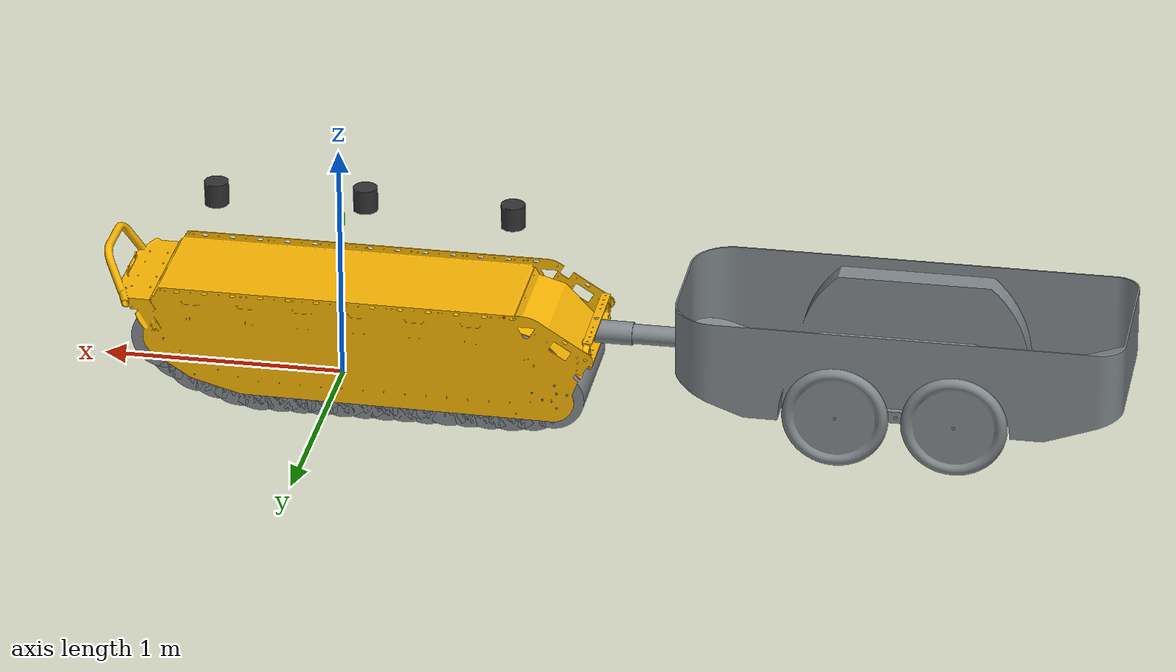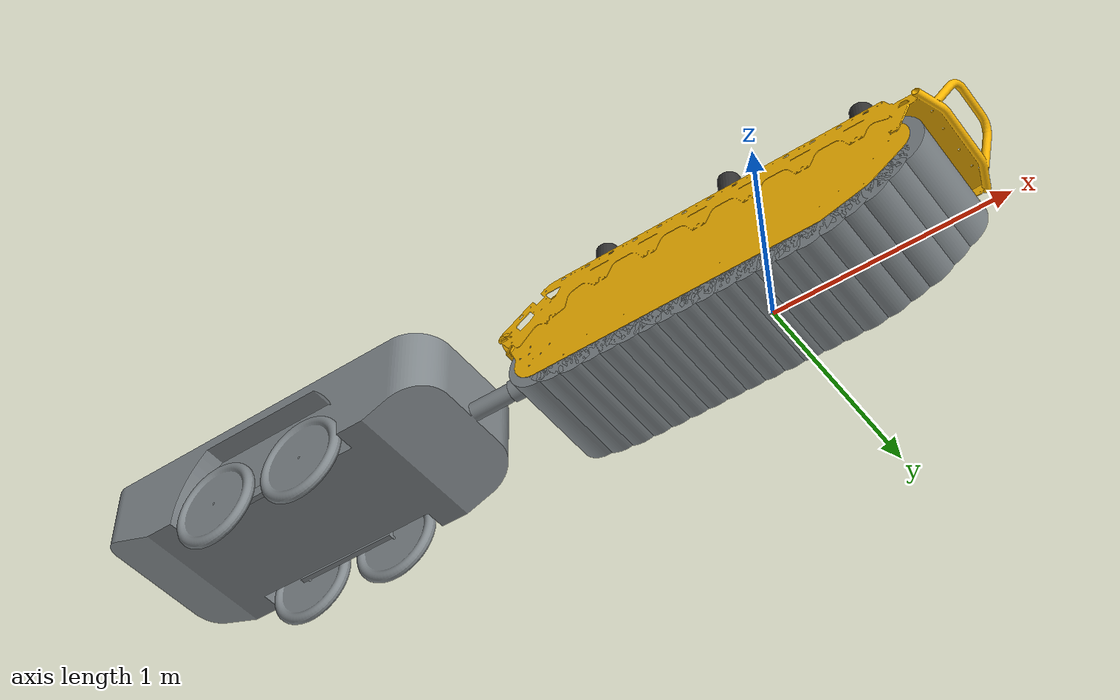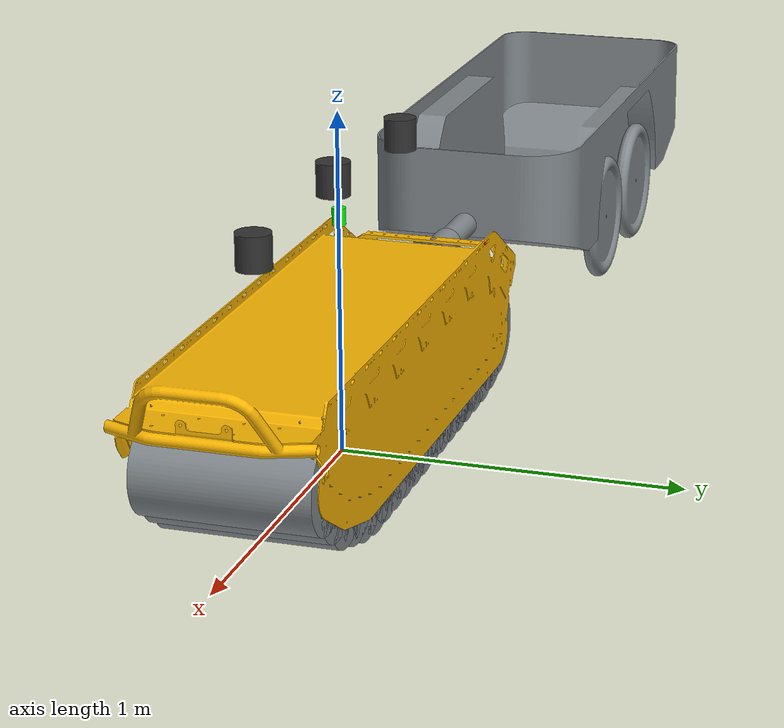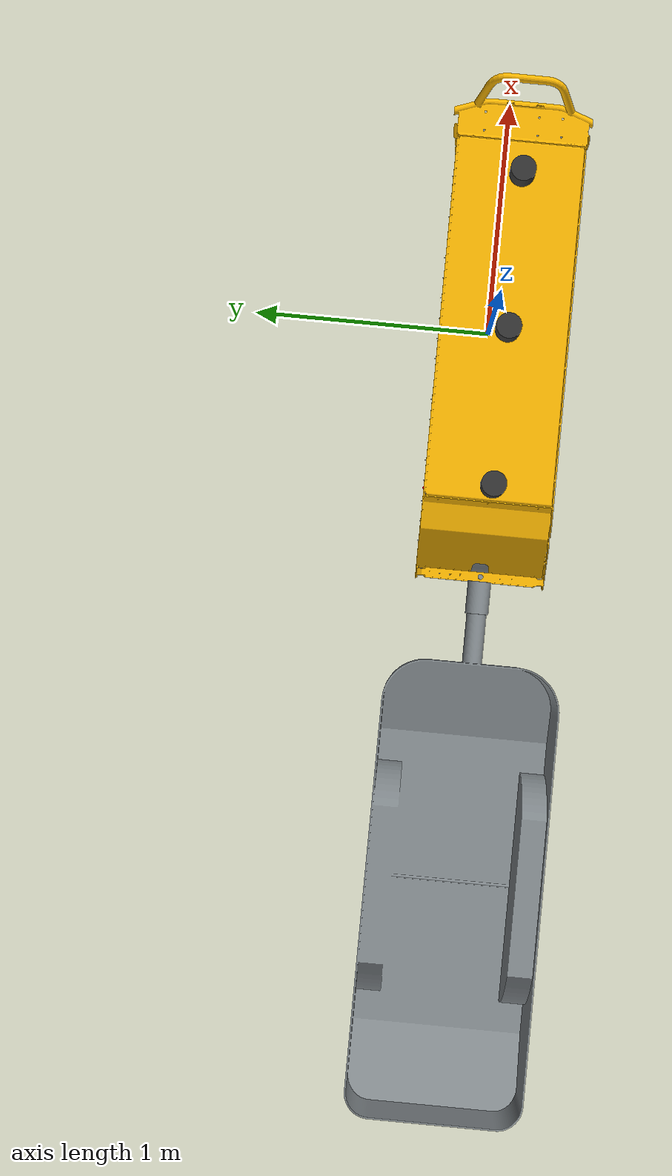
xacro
<?xml version="1.0"?>
<robot name="onshape"  xmlns:xacro="https://www.ros.org/wiki/xacro">

<xacro:arg name="calibration" default="v1"/>
<xacro:include filename="$(find mtt_description)/urdf/calibrations/calib_$(arg calibration).xacro"/>

    <xacro:macro name="default_transmission" params="joint_name">
        <transmission name="transmission_${joint_name}">
            <plugin>transmission_interface/SimpleTransmission</plugin>
            <actuator name="actuator_${joint_name}" role="actuator_${joint_name}"/>
            <joint name="${joint_name}" role="${joint_name}">
                <mechanical_reduction>1.0</mechanical_reduction>
            </joint>
        </transmission>
    </xacro:macro>

    <link name="base_footprint"/>

    <link name="base_link">
    <visual>
    <origin xyz="-0.0034808381178577409154 -0.051022168970358453 0.49330103716210749187" rpy="0 -0 ${pi}" />
    <geometry>
    <mesh filename="file://$(find mtt_description)/meshes/visual/m500_ra-02_r02.stl"/>
    </geometry>
    <material name="m500_ra-02_r02_material">
    <color rgba="0.98039215686274505668 0.71372549019607844922 0.0039215686274509803377 1.0"/>
    </material>
    </visual>

    <inertial>
    <origin xyz="-0.077915421490291292272 -0.045505372990426798396 0.20037964466672920638" rpy="0 0 0"/>
    <mass value="150" />
    <inertia ixx="11.048" ixy="0"  ixz="0" iyy="58.2688" iyz="0" izz="63.68" />
    </inertial>
    </link>

   <joint name="base_joint" type="fixed">
    <parent link="base_footprint"/>
    <child link="base_link"/>
    <origin xyz="0 0 -0.1" rpy="0 0 0"/>
    </joint>

    <link name="Rouleau_track_1">
    <visual>
    <origin xyz="0 0 -0.2619375000000000453" rpy="-1.570796326794896558 -7.703719777547410742e-33 0" />
    <geometry>
    <mesh filename="file://$(find mtt_description)/meshes/visual/rouleaufaketrack_525po.stl"/>
    </geometry>
    <material name="rouleaufaketrack_525po_material">
    <color rgba="0.50588235294117644969 0.53333333333333332593 0.54901960784313730279 1.0"/>
    </material>
    </visual>
    <inertial>
    <origin xyz="-9.082983389429123799e-12 -8.2227341536032504615e-12 -0.26193750000873389228" rpy="0 0 0"/>
    <mass value="1.0" />
    <inertia ixx="0.0254" ixy="0"  ixz="0" iyy="0.0254" iyz="0" izz="8.890e-3" />
    </inertial>
    </link>

    <joint name="1_continuous" type="continuous">
    <origin xyz="0.7014675763219452298 -0.30260966897135904707 0.29942602155526376606" rpy="1.570796326794896558 -0 -7.5633943552588769595e-16" />
    <parent link="base_link" />
    <child link="Rouleau_track_1" />
    <axis xyz="0 0 1"/>
    <limit effort="-1" velocity="20" />
    <physics>
    <simbody></simbody>
    <ode>
    <implicit_string_damper>True</implicit_string_damper>
    <fudge_factor>1</fudge_factor>
    </ode>
    <suspension>
    </suspension>
    </physics>
    </joint>

    <link name="Rouleau_track_2">
    <visual>
    <origin xyz="0 0 -0.2619375000000000453" rpy="-1.570796326794896558 -7.703719777547410742e-33 0" />
    <geometry>
    <mesh filename="file://$(find mtt_description)/meshes/visual/rouleaufaketrack_525po.stl"/>
    </geometry>
    <material name="rouleaufaketrack_525po_material">
    <color rgba="0.50588235294117644969 0.53333333333333332593 0.54901960784313730279 1.0"/>
    </material>
    </visual>
    <inertial>
    <origin xyz="-9.082983389429123799e-12 -8.2227341536032504615e-12 -0.26193750000873389228" rpy="0 0 0"/>
    <mass value="1.0" />
    <inertia ixx="0.0254" ixy="0"  ixz="0" iyy="0.0254" iyz="0" izz="8.890e-3" />
    </inertial>
    </link>

    <joint name="2_continuous" type="continuous">
    <origin xyz="0.63021293776953013488 -0.30260966897135899156 0.24925922731169392055" rpy="1.570796326794896558 -0 -7.5633943552588769595e-16" />
    <parent link="base_link" />
    <child link="Rouleau_track_2" />
    <axis xyz="0 0 1"/>
    <limit effort="-1" velocity="20" />
    <physics>
    <simbody></simbody>
    <ode>
    <implicit_string_damper>True</implicit_string_damper>
    <fudge_factor>1</fudge_factor>
    </ode>
    <suspension>
    </suspension>
    </physics>
    </joint>

    <link name="Rouleau_track_3">
    <visual>
    <origin xyz="0 0 -0.2619375000000000453" rpy="-1.570796326794896558 -2.9274135154685984966e-32 0" />
    <geometry>
    <mesh filename="file://$(find mtt_description)/meshes/visual/rouleaufaketrack_525po.stl"/>
    </geometry>
    <material name="rouleaufaketrack_525po_material">
    <color rgba="0.50588235294117644969 0.53333333333333332593 0.54901960784313730279 1.0"/>
    </material>
    </visual>
    <inertial>
    <origin xyz="-9.082983389429123799e-12 -8.2227341536032504615e-12 -0.26193750000873389228" rpy="0 0 0"/>
    <mass value="1.0" />
    <inertia ixx="0.0254" ixy="0"  ixz="0" iyy="0.0254" iyz="0" izz="8.890e-3" />
    </inertial>
    </link>

    <joint name="3_continuous" type="continuous">
    <origin xyz="0.55767703136521962204 -0.30260966897135893605 0.20171053820694723191" rpy="1.570796326794896558 -0 -7.5633943552588769595e-16" />
    <parent link="base_link" />
    <child link="Rouleau_track_3" />
    <axis xyz="0 0 1"/>
    <limit effort="-1" velocity="20" />
    <physics>
    <simbody></simbody>
    <ode>
    <implicit_string_damper>True</implicit_string_damper>
    <fudge_factor>1</fudge_factor>
    </ode>
    <suspension>
    </suspension>
    </physics>
    </joint>

    <link name="Rouleau_track_4">
    <visual>
    <origin xyz="0 0 -0.2619375000000000453" rpy="-1.570796326794896558 -2.9274135154685984966e-32 0" />
    <geometry>
    <mesh filename="file://$(find mtt_description)/meshes/visual/rouleaufaketrack_525po.stl"/>
    </geometry>
    <material name="rouleaufaketrack_525po_material">
    <color rgba="0.50588235294117644969 0.53333333333333332593 0.54901960784313730279 1.0"/>
    </material>
    </visual>
    <inertial>
    <origin xyz="-9.082983389429123799e-12 -8.2227341536032504615e-12 -0.26193750000873389228" rpy="0 0 0"/>
    <mass value="1.0" />
    <inertia ixx="0.0254" ixy="0"  ixz="0" iyy="0.0254" iyz="0" izz="8.890e-3" />
    </inertial>
    </link>

    <joint name="4_continuous" type="continuous">
    <origin xyz="0.47434412390430480411 -0.30260966897135888054 0.17622412429685807567" rpy="1.570796326794896558 -0 -7.5633943552588769595e-16" />
    <parent link="base_link" />
    <child link="Rouleau_track_4" />
    <axis xyz="0 0 1"/>
    <limit effort="-1" velocity="20" />
    <physics>
    <simbody></simbody>
    <ode>
    <implicit_string_damper>True</implicit_string_damper>
    <fudge_factor>1</fudge_factor>
    </ode>
    <suspension>
    </suspension>
    </physics>
    </joint>

    <link name="Rouleau_track_5">
    <visual>
    <origin xyz="0 0 -0.2619375000000000453" rpy="-1.570796326794896558 -2.9274135154685984966e-32 0" />
    <geometry>
    <mesh filename="file://$(find mtt_description)/meshes/visual/rouleaufaketrack_525po.stl"/>
    </geometry>
    <material name="rouleaufaketrack_525po_material">
    <color rgba="0.50588235294117644969 0.53333333333333332593 0.54901960784313730279 1.0"/>
    </material>
    </visual>

    <collision>
    <origin xyz="0 0 -0.2619375000000000453" rpy="0 -2.9274135154685984966e-32 0" />
    <geometry>
    <cylinder length="0.5" radius="0.1335"/>
    </geometry>
    </collision>

    <inertial>
    <origin xyz="-9.082983389429123799e-12 -8.2227341536032504615e-12 -0.26193750000873389228" rpy="0 0 0"/>
    <mass value="1.0" />
    <inertia ixx="0.0254" ixy="0"  ixz="0" iyy="0.0254" iyz="0" izz="8.890e-3" />
    </inertial>
    </link>

    <joint name="5_continuous" type="continuous">
    <origin xyz="0.39101121644338021621 -0.30260966897135876952 0.15073771038676886391" rpy="1.570796326794896558 -0 -7.5633943552588769595e-16" />
    <parent link="base_link" />
    <child link="Rouleau_track_5" />
    <axis xyz="0 0 1"/>
    <limit effort="-1" velocity="20" />
    <physics>
    <simbody></simbody>
    <ode>
    <implicit_string_damper>True</implicit_string_damper>
    <fudge_factor>1</fudge_factor>
    </ode>
    <suspension>
    </suspension>
    </physics>
    </joint>

    <link name="Rouleau_track_6">
    <visual>
    <origin xyz="0 0 -0.2619375000000000453" rpy="-1.570796326794896558 -2.9274135154685984966e-32 0" />
    <geometry>
    <mesh filename="file://$(find mtt_description)/meshes/visual/rouleaufaketrack_525po.stl"/>
    </geometry>
    <material name="rouleaufaketrack_525po_material">
    <color rgba="0.50588235294117644969 0.53333333333333332593 0.54901960784313730279 1.0"/>
    </material>
    </visual>
    <inertial>
    <origin xyz="-9.082983389429123799e-12 -8.2227341536032504615e-12 -0.26193750000873389228" rpy="0 0 0"/>
    <mass value="1.0" />
    <inertia ixx="0.0254" ixy="0"  ixz="0" iyy="0.0254" iyz="0" izz="8.890e-3" />
    </inertial>
    </link>

    <joint name="6_continuous" type="continuous">
    <origin xyz="0.30589785624702453548 -0.30260966897135871401 0.13716525069048957075" rpy="1.570796326794896558 -0 -7.5633943552588769595e-16" />
    <parent link="base_link" />
    <child link="Rouleau_track_6" />
    <axis xyz="0 0 1"/>
    <limit effort="-1" velocity="20" />
    <physics>
    <simbody></simbody>
    <ode>
    <implicit_string_damper>True</implicit_string_damper>
    <fudge_factor>1</fudge_factor>
    </ode>
    <suspension>
    </suspension>
    </physics>
    </joint>

    <link name="Rouleau_track_7">
    <visual>
    <origin xyz="5.5511151231257827021e-17 0 -0.2619375000000000453" rpy="-1.570796326794896558 -2.9274135154685984966e-32 0" />
    <geometry>
    <mesh filename="file://$(find mtt_description)/meshes/visual/rouleaufaketrack_525po.stl"/>
    </geometry>
    <material name="rouleaufaketrack_525po_material">
    <color rgba="0.50588235294117644969 0.53333333333333332593 0.54901960784313730279 1.0"/>
    </material>
    </visual>
    <inertial>
    <origin xyz="-9.0829278782778925411e-12 -8.2227341536032504615e-12 -0.26193750000873389228" rpy="0 0 0"/>
    <mass value="1.0" />
    <inertia ixx="0.0254" ixy="0"  ixz="0" iyy="0.0254" iyz="0" izz="8.890e-3" />
    </inertial>
    </link>

    <joint name="7_continuous" type="continuous">
    <origin xyz="0.21875469438405417688 -0.3026096689713586585 0.13717527124629197433" rpy="1.570796326794896558 -0 -7.5633943552588769595e-16" />
    <parent link="base_link" />
    <child link="Rouleau_track_7" />
    <axis xyz="0 0 1"/>
    <limit effort="-1" velocity="20" />
    <physics>
    <simbody></simbody>
    <ode>
    <implicit_string_damper>True</implicit_string_damper>
    <fudge_factor>1</fudge_factor>
    </ode>
    <suspension>
    </suspension>
    </physics>
    </joint>

    <link name="Rouleau_track_8">
    <visual>
    <origin xyz="5.5511151231257827021e-17 0 -0.2619375000000000453" rpy="-1.570796326794896558 -2.9274135154685984966e-32 0" />
    <geometry>
    <mesh filename="file://$(find mtt_description)/meshes/visual/rouleaufaketrack_525po.stl"/>
    </geometry>
    <material name="rouleaufaketrack_525po_material">
    <color rgba="0.50588235294117644969 0.53333333333333332593 0.54901960784313730279 1.0"/>
    </material>
    </visual>
    <inertial>
    <origin xyz="-9.0829278782778925411e-12 -8.2227341536032504615e-12 -0.26193750000873389228" rpy="0 0 0"/>
    <mass value="1.0" />
    <inertia ixx="0.0254" ixy="0"  ixz="0" iyy="0.0254" iyz="0" izz="8.890e-3" />
    </inertial>
    </link>

    <joint name="8_continuous" type="continuous">
    <origin xyz="0.13161153252108562239 -0.3026096689713586585 0.13718529180209448892" rpy="1.570796326794896558 -0 -7.5633943552588769595e-16" />
    <parent link="base_link" />
    <child link="Rouleau_track_8" />
    <axis xyz="0 0 1"/>
    <limit effort="-1" velocity="20" />
    <physics>
    <simbody></simbody>
    <ode>
    <implicit_string_damper>True</implicit_string_damper>
    <fudge_factor>1</fudge_factor>
    </ode>
    <suspension>
    </suspension>
    </physics>
    </joint>

    <link name="Rouleau_track_9">
    <visual>
    <origin xyz="5.5511151231257827021e-17 0 -0.2619375000000000453" rpy="-1.570796326794896558 -2.9274135154685984966e-32 0" />
    <geometry>
    <mesh filename="file://$(find mtt_description)/meshes/visual/rouleaufaketrack_525po.stl"/>
    </geometry>
    <material name="rouleaufaketrack_525po_material">
    <color rgba="0.50588235294117644969 0.53333333333333332593 0.54901960784313730279 1.0"/>
    </material>
    </visual>
    <inertial>
    <origin xyz="-9.0829278782778925411e-12 -8.2227341536032504615e-12 -0.26193750000873389228" rpy="0 0 0"/>
    <mass value="1.0" />
    <inertia ixx="0.0254" ixy="0"  ixz="0" iyy="0.0254" iyz="0" izz="8.890e-3" />
    </inertial>
    </link>

    <joint name="9_continuous" type="continuous">
    <origin xyz="0.044468370658119274474 -0.30260966897135854747 0.13719531235789694801" rpy="1.570796326794896558 -0 -7.5633943552588769595e-16" />
    <parent link="base_link" />
    <child link="Rouleau_track_9" />
    <axis xyz="0 0 1"/>
    <limit effort="-1" velocity="20" />
    <physics>
    <simbody></simbody>
    <ode>
    <implicit_string_damper>True</implicit_string_damper>
    <fudge_factor>1</fudge_factor>
    </ode>
    <suspension>
    </suspension>
    </physics>
    </joint>

    <link name="Rouleau_track_10">
    <visual>
    <origin xyz="-2.7755575615628913511e-17 0 -0.2619375000000000453" rpy="-1.570796326794896558 -2.9274135154685984966e-32 0" />
    <geometry>
    <mesh filename="file://$(find mtt_description)/meshes/visual/rouleaufaketrack_525po.stl"/>
    </geometry>
    <material name="rouleaufaketrack_525po_material">
    <color rgba="0.50588235294117644969 0.53333333333333332593 0.54901960784313730279 1.0"/>
    </material>
    </visual>
    <inertial>
    <origin xyz="-9.0830111450047394279e-12 -8.2227341536032504615e-12 -0.26193750000873389228" rpy="0 0 0"/>
    <mass value="1.0" />
    <inertia ixx="0.0254" ixy="0"  ixz="0" iyy="0.0254" iyz="0" izz="8.890e-3" />
    </inertial>
    </link>

    <joint name="10_continuous" type="continuous">
    <origin xyz="-0.042674791204848093462 -0.30260966897135843645 0.13720533291369940709" rpy="1.570796326794896558 -0 -7.5633943552588769595e-16" />
    <parent link="base_link" />
    <child link="Rouleau_track_10" />
    <axis xyz="0 0 1"/>
    <limit effort="-1" velocity="20" />
    <physics>
    <simbody></simbody>
    <ode>
    <implicit_string_damper>True</implicit_string_damper>
    <fudge_factor>1</fudge_factor>
    </ode>
    <suspension>
    </suspension>
    </physics>
    </joint>

    <link name="Rouleau_track_11">
    <visual>
    <origin xyz="-2.7755575615628913511e-17 0 -0.2619375000000000453" rpy="-1.570796326794896558 -2.9274135154685984966e-32 0" />
    <geometry>
    <mesh filename="file://$(find mtt_description)/meshes/visual/rouleaufaketrack_525po.stl"/>
    </geometry>
    <material name="rouleaufaketrack_525po_material">
    <color rgba="0.50588235294117644969 0.53333333333333332593 0.54901960784313730279 1.0"/>
    </material>
    </visual>
    <inertial>
    <origin xyz="-9.0830111450047394279e-12 -8.2227341536032504615e-12 -0.26193750000873389228" rpy="0 0 0"/>
    <mass value="1.0" />
    <inertia ixx="0.0254" ixy="0"  ixz="0" iyy="0.0254" iyz="0" izz="8.890e-3" />
    </inertial>
    </link>

    <joint name="11_continuous" type="continuous">
    <origin xyz="-0.12981795306781560018 -0.30260966897135843645 0.13721535346950286538" rpy="1.570796326794896558 -0 -7.5633943552588769595e-16" />
    <parent link="base_link" />
    <child link="Rouleau_track_11" />
    <axis xyz="0 0 1"/>
    <limit effort="-1" velocity="20" />
    <physics>
    <simbody></simbody>
    <ode>
    <implicit_string_damper>True</implicit_string_damper>
    <fudge_factor>1</fudge_factor>
    </ode>
    <suspension>
    </suspension>
    </physics>
    </joint>

    <link name="Rouleau_track_12">
    <visual>
    <origin xyz="0 0 -0.2619375000000000453" rpy="-1.570796326794896558 -2.9274135154685984966e-32 0" />
    <geometry>
    <mesh filename="file://$(find mtt_description)/meshes/visual/rouleaufaketrack_525po.stl"/>
    </geometry>
    <material name="rouleaufaketrack_525po_material">
    <color rgba="0.50588235294117644969 0.53333333333333332593 0.54901960784313730279 1.0"/>
    </material>
    </visual>
    <inertial>
    <origin xyz="-9.082983389429123799e-12 -8.2227341536032504615e-12 -0.26193750000873389228" rpy="0 0 0"/>
    <mass value="1.0" />
    <inertia ixx="0.0254" ixy="0"  ixz="0" iyy="0.0254" iyz="0" izz="8.890e-3" />
    </inertial>
    </link>

    <joint name="12_continuous" type="continuous">
    <origin xyz="-0.21696111493078301669 -0.30260966897135832543 0.13722537402530532447" rpy="1.570796326794896558 -0 -7.5633943552588769595e-16" />
    <parent link="base_link" />
    <child link="Rouleau_track_12" />
    <axis xyz="0 0 1"/>
    <limit effort="-1" velocity="20" />
    <physics>
    <simbody></simbody>
    <ode>
    <implicit_string_damper>True</implicit_string_damper>
    <fudge_factor>1</fudge_factor>
    </ode>
    <suspension>
    </suspension>
    </physics>
    </joint>

    <link name="Rouleau_track_13">
    <visual>
    <origin xyz="0 0 -0.26193750000000010081" rpy="-1.570796326794896558 -2.9274135154685984966e-32 0" />
    <geometry>
    <mesh filename="file://$(find mtt_description)/meshes/visual/rouleaufaketrack_525po.stl"/>
    </geometry>
    <material name="rouleaufaketrack_525po_material">
    <color rgba="0.50588235294117644969 0.53333333333333332593 0.54901960784313730279 1.0"/>
    </material>
    </visual>
    <inertial>
    <origin xyz="-9.082983389429123799e-12 -8.2227341536032504615e-12 -0.26193750000873394779" rpy="0 0 0"/>
    <mass value="1.0" />
    <inertia ixx="0.0254" ixy="0"  ixz="0" iyy="0.0254" iyz="0" izz="8.890e-3" />
    </inertial>
    </link>

    <joint name="13_continuous" type="continuous">
    <origin xyz="-0.30410427679375034993 -0.30260966897135821441 0.13723539458110778355" rpy="1.570796326794896558 -0 -7.5633943552588769595e-16" />
    <parent link="base_link" />
    <child link="Rouleau_track_13" />
    <axis xyz="0 0 1"/>
    <limit effort="-1" velocity="20" />
    <physics>
    <simbody></simbody>
    <ode>
    <implicit_string_damper>True</implicit_string_damper>
    <fudge_factor>1</fudge_factor>
    </ode>
    <suspension>
    </suspension>
    </physics>
    </joint>

    <link name="Rouleau_track_14">
    <visual>
    <origin xyz="-2.7755575615628913511e-17 0 -0.2619375000000000453" rpy="-1.570796326794896558 -2.9274135154685984966e-32 0" />
    <geometry>
    <mesh filename="file://$(find mtt_description)/meshes/visual/rouleaufaketrack_525po.stl"/>
    </geometry>
    <material name="rouleaufaketrack_525po_material">
    <color rgba="0.50588235294117644969 0.53333333333333332593 0.54901960784313730279 1.0"/>
    </material>
    </visual>
    <inertial>
    <origin xyz="-9.0830111450047394279e-12 -8.2227341536032504615e-12 -0.26193750000873389228" rpy="0 0 0"/>
    <mass value="1.0" />
    <inertia ixx="0.0254" ixy="0"  ixz="0" iyy="0.0254" iyz="0" izz="8.890e-3" />
    </inertial>
    </link>

    <joint name="14_continuous" type="continuous">
    <origin xyz="-0.39124743865671768317 -0.30260966897135821441 0.13724541513691029815" rpy="1.570796326794896558 -0 -7.5633943552588769595e-16" />
    <parent link="base_link" />
    <child link="Rouleau_track_14" />
    <axis xyz="0 0 1"/>
    <limit effort="-1" velocity="20" />
    <physics>
    <simbody></simbody>
    <ode>
    <implicit_string_damper>True</implicit_string_damper>
    <fudge_factor>1</fudge_factor>
    </ode>
    <suspension>
    </suspension>
    </physics>
    </joint>

    <link name="Rouleau_track_15">
    <visual>
    <origin xyz="-2.7755575615628913511e-17 0 -0.2619375000000000453" rpy="-1.570796326794896558 -2.9274135154685984966e-32 0" />
    <geometry>
    <mesh filename="file://$(find mtt_description)/meshes/visual/rouleaufaketrack_525po.stl"/>
    </geometry>
    <material name="rouleaufaketrack_525po_material">
    <color rgba="0.50588235294117644969 0.53333333333333332593 0.54901960784313730279 1.0"/>
    </material>
    </visual>
    <inertial>
    <origin xyz="-9.0830111450047394279e-12 -8.2227341536032504615e-12 -0.26193750000873389228" rpy="0 0 0"/>
    <mass value="1.0" />
    <inertia ixx="0.0254" ixy="0"  ixz="0" iyy="0.0254" iyz="0" izz="8.890e-3" />
    </inertial>
    </link>

    <joint name="15_continuous" type="continuous">
    <origin xyz="-0.47839060051968412823 -0.30260966897135821441 0.13725543569271270172" rpy="1.570796326794896558 -0 -7.5633943552588769595e-16" />
    <parent link="base_link" />
    <child link="Rouleau_track_15" />
    <axis xyz="0 0 1"/>
    <limit effort="-1" velocity="20" />
    <physics>
    <simbody></simbody>
    <ode>
    <implicit_string_damper>True</implicit_string_damper>
    <fudge_factor>1</fudge_factor>
    </ode>
    <suspension>
    </suspension>
    </physics>
    </joint>

    <link name="Rouleau_track_16">
    <visual>
    <origin xyz="5.5511151231257827021e-17 0 -0.2619375000000000453" rpy="-1.570796326794896558 -2.9274135154685984966e-32 0" />
    <geometry>
    <mesh filename="file://$(find mtt_description)/meshes/visual/rouleaufaketrack_525po.stl"/>
    </geometry>
    <material name="rouleaufaketrack_525po_material">
    <color rgba="0.50588235294117644969 0.53333333333333332593 0.54901960784313730279 1.0"/>
    </material>
    </visual>
    <inertial>
    <origin xyz="-9.0829278782778925411e-12 -8.2227341536032504615e-12 -0.26193750000873389228" rpy="0 0 0"/>
    <mass value="1.0" />
    <inertia ixx="0.0254" ixy="0"  ixz="0" iyy="0.0254" iyz="0" izz="8.890e-3" />
    </inertial>
    </link>

    <joint name="16_continuous" type="continuous">
    <origin xyz="-0.56553376238265151699 -0.30260966897135799236 0.13726545624851521632" rpy="1.570796326794896558 -0 -7.5633943552588769595e-16" />
    <parent link="base_link" />
    <child link="Rouleau_track_16" />
    <axis xyz="0 0 1"/>
    <limit effort="-1" velocity="20" />
    <physics>
    <simbody></simbody>
    <ode>
    <implicit_string_damper>True</implicit_string_damper>
    <fudge_factor>1</fudge_factor>
    </ode>
    <suspension>
    </suspension>
    </physics>
    </joint>

    <link name="Rouleau_track_17">
    <visual>
    <origin xyz="5.5511151231257827021e-17 0 -0.2619375000000000453" rpy="-1.570796326794896558 -2.9274135154685984966e-32 0" />
    <geometry>
    <mesh filename="file://$(find mtt_description)/meshes/visual/rouleaufaketrack_525po.stl"/>
    </geometry>
    <material name="rouleaufaketrack_525po_material">
    <color rgba="0.50588235294117644969 0.53333333333333332593 0.54901960784313730279 1.0"/>
    </material>
    </visual>
    <inertial>
    <origin xyz="-9.0829278782778925411e-12 -8.2227341536032504615e-12 -0.26193750000873389228" rpy="0 0 0"/>
    <mass value="1.0" />
    <inertia ixx="0.0254" ixy="0"  ixz="0" iyy="0.0254" iyz="0" izz="8.890e-3" />
    </inertial>
    </link>

    <joint name="17_continuous" type="continuous">
    <origin xyz="-0.65267692424561885023 -0.30260966897135799236 0.13727547680431761989" rpy="1.570796326794896558 -0 -7.5633943552588769595e-16" />
    <parent link="base_link" />
    <child link="Rouleau_track_17" />
    <axis xyz="0 0 1"/>
    <limit effort="-1" velocity="20" />
    <physics>
    <simbody></simbody>
    <ode>
    <implicit_string_damper>True</implicit_string_damper>
    <fudge_factor>1</fudge_factor>
    </ode>
    <suspension>
    </suspension>
    </physics>
    </joint>

    <link name="Rouleau_track_18">
    <visual>
    <origin xyz="5.5511151231257827021e-17 0 -0.26193750000000010081" rpy="-1.570796326794896558 -2.9274135154685984966e-32 0" />
    <geometry>
    <mesh filename="file://$(find mtt_description)/meshes/visual/rouleaufaketrack_525po.stl"/>
    </geometry>
    <material name="rouleaufaketrack_525po_material">
    <color rgba="0.50588235294117644969 0.53333333333333332593 0.54901960784313730279 1.0"/>
    </material>
    </visual>
    <inertial>
    <origin xyz="-9.0829278782778925411e-12 -8.2227341536032504615e-12 -0.26193750000873394779" rpy="0 0 0"/>
    <mass value="1.0" />
    <inertia ixx="0.0254" ixy="0"  ixz="0" iyy="0.0254" iyz="0" izz="8.890e-3" />
    </inertial>
    </link>

    <joint name="18_continuous" type="continuous">
    <origin xyz="-0.73982008610858640552 -0.30260966897135788134 0.13728549736012013449" rpy="1.570796326794896558 -0 -7.5633943552588769595e-16" />
    <parent link="base_link" />
    <child link="Rouleau_track_18" />
    <axis xyz="0 0 1"/>
    <limit effort="-1" velocity="20" />
    <physics>
    <simbody></simbody>
    <ode>
    <implicit_string_damper>True</implicit_string_damper>
    <fudge_factor>1</fudge_factor>
    </ode>
    <suspension>
    </suspension>
    </physics>
    </joint>

    <link name="Rouleau_track_19">
    <visual>
    <origin xyz="0 0 -0.2619375000000000453" rpy="-1.570796326794896558 -2.9274135154685984966e-32 0" />
    <geometry>
    <mesh filename="file://$(find mtt_description)/meshes/visual/rouleaufaketrack_525po.stl"/>
    </geometry>
    <material name="rouleaufaketrack_525po_material">
    <color rgba="0.50588235294117644969 0.53333333333333332593 0.54901960784313730279 1.0"/>
    </material>
    </visual>
    <inertial>
    <origin xyz="-9.082983389429123799e-12 -8.2227341536032504615e-12 -0.26193750000873389228" rpy="0 0 0"/>
    <mass value="1.0" />
    <inertia ixx="0.0254" ixy="0"  ixz="0" iyy="0.0254" iyz="0" izz="8.890e-3" />
    </inertial>
    </link>

    <joint name="19_continuous" type="continuous">
    <origin xyz="-0.82595460894701899779 -0.30260966897135777032 0.14666682073043030288" rpy="1.570796326794896558 -0 -7.5633943552588769595e-16" />
    <parent link="base_link" />
    <child link="Rouleau_track_19" />
    <axis xyz="0 0 1"/>
    <limit effort="-1" velocity="20" />
    <physics>
    <simbody></simbody>
    <ode>
    <implicit_string_damper>True</implicit_string_damper>
    <fudge_factor>1</fudge_factor>
    </ode>
    <suspension>
    </suspension>
    </physics>
    </joint>

    <link name="Rouleau_track_20">
    <visual>
    <origin xyz="0 -1.3877787807814456755e-17 -0.2619375000000000453" rpy="-1.570796326794896558 1.0785207688568652149e-32 0" />
    <geometry>
    <mesh filename="file://$(find mtt_description)/meshes/visual/rouleaufaketrack_525po.stl"/>
    </geometry>
    <material name="rouleaufaketrack_525po_material">
    <color rgba="0.50588235294117644969 0.53333333333333332593 0.54901960784313730279 1.0"/>
    </material>
    </visual>

    <collision>
    <origin xyz="0 -1.3877787807814456755e-17 -0.2619375000000000453" rpy="0 1.0785207688568652149e-32 0" />
    <geometry>
    <cylinder length="0.5" radius="0.1335"/>
    </geometry>
    </collision>

    <inertial>
    <origin xyz="-9.082983389429123799e-12 -8.2227480313910582759e-12 -0.26193750000873389228" rpy="0 0 0"/>
    <mass value="1.0" />
    <inertia ixx="0.0254" ixy="0"  ixz="0" iyy="0.0254" iyz="0" izz="8.890e-3" />
    </inertial>
    </link>

    <joint name="20_continuous" type="continuous">
    <origin xyz="-0.91110403062049183376 -0.30260966897135777032 0.16520075578373016878" rpy="1.570796326794896558 -0 -7.5633943552588769595e-16" />
    <parent link="base_link" />
    <child link="Rouleau_track_20" />
    <axis xyz="0 0 1"/>
    <limit effort="-1" velocity="20" />
    <physics>
    <simbody></simbody>
    <ode>
    <implicit_string_damper>True</implicit_string_damper>
    <fudge_factor>1</fudge_factor>
    </ode>
    <suspension>
    </suspension>
    </physics>
    </joint>

    <link name="Frame_fixation_articule">
    <visual>
    <origin xyz="0 0 -0.26352500000102996314" rpy="1.570796326794896558 2.9274135154685984966e-32 0" />
    <geometry>
    <mesh filename="file://$(find mtt_description)/meshes/visual/m500_fa-f-01_r00.stl"/>
    </geometry>
    <material name="m500_fa-f-01_r00_material">
    <color rgba="0.98039215686274505668 0.71372549019607844922 0.0039215686274509803377 1.0"/>
    </material>
    </visual>
    <inertial>
    <origin xyz="-3.9892756405493079145e-11 -1.1475286443859219259e-10 -0.26817516801928165115" rpy="0 0 0"/>
    <mass value="4.2856980941026048271" />
    <inertia ixx="0.15081833822080548124" ixy="-3.1493952847483546326e-14"  ixz="-2.7291301433546465536e-09" iyy="0.14291517499876990605" iyz="4.1782617806359028221e-10" izz="0.0087729760408515339992" />
    </inertial>
    </link>

    <link name="joint_remorque_simple">
    <visual>
    <origin xyz="0 0 -0.11429999999970297253" rpy="3.141592653589793116 1.0947644252537633367e-47 2.4651903288156618919e-32" />
    <geometry>
    <mesh filename="file://$(find mtt_description)/meshes/visual/joint_remorque_simple.stl"/>
    </geometry>
    <material name="joint_remorque_simple_material">
    <color rgba="0.50588235294117644969 0.53333333333333332593 0.54901960784313730279 1.0"/>
    </material>
    </visual>
    <inertial>
    <origin xyz="-0.066649078397283970099 -1.3264048723360915067e-08 -0.057149999999851569532" rpy="0 0 0"/>
    <mass value="2.4244944218593222907" />
    <inertia ixx="0.0045362397987309356281" ixy="2.7180197249639030826e-09"  ixz="2.2800525023181053727e-41" iyy="0.0080855686635830838899" iyz="-9.2489917741012919164e-10" izz="0.0077799714228289117493" />
    </inertial>
    </link>

    <link name="MTT_remorque">
    <visual>
    <origin xyz="0 0 0" rpy="-1.570796326794896558 -2.9274135154686072548e-32 0" />
    <geometry>
    <mesh filename="file://$(find mtt_description)/meshes/visual/remorquegrise_corps.stl"/>
    </geometry>
    <material name="remorquegrise_corps_material">
    <color rgba="0.50588235294117644969 0.53333333333333332593 0.54901960784313730279 1.0"/>
    </material>
    </visual>
    <inertial>
    <origin xyz="-1.3754218481959806043e-07 0.0034236501170869263963 -1.2492342427482756584" rpy="0 0 0"/>
    <mass value="75" />
    <inertia ixx="19.61" ixy="1.9694375352015794851e-06"  ixz="3.4143802835478518731e-05" iyy="22.119" iyz="0.08948044734924905097" izz="4.369" />
    </inertial>
    </link>

    <link name="Remorque_lien_roue_gauche">
    <visual>
    <origin xyz="-0.4699000000010151723 -0.014477999967073801324 -0.025400000000000005906" rpy="0 2.9274135154685984966e-32 0" />
    <geometry>
    <mesh filename="file://$(find mtt_description)/meshes/visual/remorquebarrelienroues.stl"/>
    </geometry>
    <material name="remorquebarrelienroues_material">
    <color rgba="0.50588235294117644969 0.53333333333333332593 0.54901960784313730279 1.0"/>
    </material>
    </visual>
    <inertial>
    <origin xyz="-2.2204460492503130808e-16 -1.7347234759768070944e-18 -0.011962764931897929346" rpy="0 0 0"/>
    <mass value="1.0" />
    <inertia ixx="0.0015481614309977712648" ixy="0"  ixz="3.398701470065399431e-33" iyy="0.11698078969574195185" iyz="0" izz="0.11764728620809132564" />
    </inertial>
    </link>

    <link name="remorque_roue_FL">
    <visual>
    <origin xyz="0 -3.3306690738754696213e-16 0" rpy="0 2.9274135154685984966e-32 0" />
    <geometry>
    <mesh filename="file://$(find mtt_description)/meshes/visual/remorqueroue.stl"/>
    </geometry>
    <material name="remorqueroue_material">
    <color rgba="0.50588235294117644969 0.53333333333333332593 0.54901960784313730279 1.0"/>
    </material>
    </visual>
    <collision>
    <origin xyz="0 -3.3306690738754696213e-16 0" rpy="0 2.9274135154685984966e-32 0" />
    <geometry>
    <cylinder length="0.12" radius="0.2"/>
    </geometry>
    </collision>
    <inertial>
    <origin xyz="-5.5159452104843917813e-18 -3.3329708142992708841e-16 -0.012700000000000008157" rpy="0 0 0"/>
    <mass value="1.0" />
    <inertia ixx="0.0149" ixy="0"  ixz="1.3743513466638252754e-32" iyy="0.0149" iyz="0" izz="0.029595" />
    </inertial>
    </link>

    <joint name="frontleft_wheel" type="continuous">
    <origin xyz="0.24129999999999984794 0 0.050800000000000039568" rpy="0 2.9274135154685984966e-32 0" />
    <parent link="Remorque_lien_roue_gauche" />
    <child link="remorque_roue_FL" />
    <axis xyz="0 0 1"/>
    <limit effort="-1" velocity="20" />
    <physics>
    <simbody></simbody>
    <ode>
    <implicit_string_damper>True</implicit_string_damper>
    <fudge_factor>1</fudge_factor>
    </ode>
    <suspension>
    </suspension>
    </physics>
    </joint>

    <link name="remorque_roue_BL">
    <visual>
    <origin xyz="0 -3.3306690738754696213e-16 0" rpy="0 2.9274135154685984966e-32 0" />
    <geometry>
    <mesh filename="file://$(find mtt_description)/meshes/visual/remorqueroue.stl"/>
    </geometry>
    <material name="remorqueroue_material">
    <color rgba="0.50588235294117644969 0.53333333333333332593 0.54901960784313730279 1.0"/>
    </material>
    </visual>
    <collision>
    <origin xyz="0 -3.3306690738754696213e-16 0" rpy="0 2.9274135154685984966e-32 0" />
    <geometry>
    <cylinder length="0.12" radius="0.2"/>
    </geometry>
    </collision>
    <inertial>
    <origin xyz="-5.5159452104843917813e-18 -3.3329708142992708841e-16 -0.012700000000000008157" rpy="0 0 0"/>
    <mass value="1.0" />
    <inertia ixx="0.0149" ixy="0"  ixz="1.3743513466638252754e-32" iyy="0.0149" iyz="0" izz="0.029595" />
    </inertial>
    </link>

    <joint name="backleft_wheel" type="continuous">
    <origin xyz="-0.24129999999999984794 0 0.050799999999999984057" rpy="0 2.9274135154685984966e-32 0" />
    <parent link="Remorque_lien_roue_gauche" />
    <child link="remorque_roue_BL" />
    <axis xyz="0 0 1"/>
    <limit effort="-1" velocity="20" />
    <physics>
    <simbody></simbody>
    <ode>
    <implicit_string_damper>True</implicit_string_damper>
    <fudge_factor>1</fudge_factor>
    </ode>
    <suspension>
    </suspension>
    </physics>
    </joint>

    <joint name="Remorque_lien_roue_gauche_joint" type="revolute">
    <origin xyz="0.2793999999999999817 -0.13792199999999998905 -1.2699999999999995737" rpy="-3.141592653589793116 -1.570796326794896558 0" />
    <parent link="MTT_remorque" />
    <child link="Remorque_lien_roue_gauche" />
    <axis xyz="0 0 1"/>
    <limit effort="-1" velocity="20" lower="-0.52359877559829881566" upper="0.52359877559829881566"/>
    </joint>

    <link name="Remorque_lien_roue_droite">
    <visual>
    <origin xyz="-0.4699000000010151723 -0.014477999967073801324 -0.025400000000000033662" rpy="0 -2.9274135154685984966e-32 0" />
    <geometry>
    <mesh filename="file://$(find mtt_description)/meshes/visual/remorquebarrelienroues.stl"/>
    </geometry>
    <material name="remorquebarrelienroues_material">
    <color rgba="0.50588235294117644969 0.53333333333333332593 0.54901960784313730279 1.0"/>
    </material>
    </visual>
    <inertial>
    <origin xyz="-2.2204460492503130808e-16 -1.7347234759768070944e-18 -0.011962764931897957102" rpy="0 0 0"/>
    <mass value="1.0" />
    <inertia ixx="0.0015481614309977712648" ixy="0"  ixz="-3.398701470065399431e-33" iyy="0.11698078969574195185" iyz="0" izz="0.11764728620809132564" />
    </inertial>
    </link>

    <link name="remorque_roue_FR">
    <visual>
    <origin xyz="0 -3.3306690738754696213e-16 5.5511151231257827021e-17" rpy="0 -2.9274135154685984966e-32 0" />
    <geometry>
    <mesh filename="file://$(find mtt_description)/meshes/visual/remorqueroue.stl"/>
    </geometry>
    <material name="remorqueroue_material">
    <color rgba="0.50588235294117644969 0.53333333333333332593 0.54901960784313730279 1.0"/>
    </material>
    </visual>
    <collision>
    <origin xyz="0 -3.3306690738754696213e-16 5.5511151231257827021e-17" rpy="0 -2.9274135154685984966e-32 0" />
    <geometry>
    <cylinder length="0.12" radius="0.2"/>
    </geometry>
    </collision>
    <inertial>
    <origin xyz="-5.5159452104843917813e-18 -3.3329708142992708841e-16 -0.012699999999999952646" rpy="0 0 0"/>
    <mass value="1.0" />
    <inertia ixx="0.0149" ixy="0"  ixz="-1.3743513466638252754e-32" iyy="0.0149" iyz="0" izz="0.029595" />
    </inertial>
    </link>

    <joint name="frontright_wheel" type="continuous">
    <origin xyz="0.24129999999999984794 -1.1102230246251565404e-16 0.050799999999999956302" rpy="0 -2.9274135154685984966e-32 0" />
    <parent link="Remorque_lien_roue_droite" />
    <child link="remorque_roue_FR" />
    <axis xyz="0 0 1"/>
    <limit effort="-1" velocity="20" />
    <physics>
    <simbody></simbody>
    <ode>
    <implicit_string_damper>True</implicit_string_damper>
    <fudge_factor>1</fudge_factor>
    </ode>
    <suspension>
    </suspension>
    </physics>
    </joint>

    <link name="remorque_roue_BR">
    <visual>
    <origin xyz="0 -3.3306690738754696213e-16 0" rpy="0 -2.9274135154685984966e-32 0" />
    <geometry>
    <mesh filename="file://$(find mtt_description)/meshes/visual/remorqueroue.stl"/>
    </geometry>
    <material name="remorqueroue_material">
    <color rgba="0.50588235294117644969 0.53333333333333332593 0.54901960784313730279 1.0"/>
    </material>
    </visual>
    <collision>
    <origin xyz="0 -3.3306690738754696213e-16 0" rpy="0 -2.9274135154685984966e-32 0" />
    <geometry>
    <cylinder length="0.12" radius="0.2"/>
    </geometry>
    </collision>
    <inertial>
    <origin xyz="-5.5159452104843917813e-18 -3.3329708142992708841e-16 -0.012700000000000008157" rpy="0 0 0"/>
    <mass value="1.0" />
    <inertia ixx="0.0149" ixy="0"  ixz="-1.3743513466638252754e-32" iyy="0.0149" iyz="0" izz="0.029595" />
    </inertial>
    </link>

    <joint name="backright_wheel" type="continuous">
    <origin xyz="-0.24130000000000029203 0 0.050799999999999845279" rpy="0 -2.9274135154685984966e-32 0" />
    <parent link="Remorque_lien_roue_droite" />
    <child link="remorque_roue_BR" />
    <axis xyz="0 0 1"/>
    <limit effort="-1" velocity="20" />
    <physics>
    <simbody></simbody>
    <ode>
    <implicit_string_damper>True</implicit_string_damper>
    <fudge_factor>1</fudge_factor>
    </ode>
    <suspension>
    </suspension>
    </physics>
    </joint>

    <joint name="Remorque_lien_roue_droite_joint" type="revolute">
    <origin xyz="-0.27940000000000003721 -0.13792199999999998905 -1.2700000000000000178" rpy="-0 -1.570796326794896558 0" />
    <parent link="MTT_remorque" />
    <child link="Remorque_lien_roue_droite" />
    <axis xyz="0 0 1"/>
    <limit effort="-1" velocity="20" lower="-0.52359877559829881566" upper="0.52359877559829881566"/>
    <physics>
    <simbody></simbody>
    <ode>
    <implicit_string_damper>True</implicit_string_damper>
    <fudge_factor>1</fudge_factor>
    </ode>
    <suspension>
    </suspension>
    </physics>
    </joint>

    <joint name="roll" type="revolute">
    <origin xyz="0 -1.1102230246251565404e-16 -0.057149999999851597288" rpy="-1.570796326794896558 -1.8488927466117469663e-32 -1.570796326794896558" />
    <parent link="joint_remorque_simple" />
    <child link="MTT_remorque" />
    <axis xyz="0 0 1"/>
    <limit effort="-1" velocity="20" lower="-1.570796326794896558" upper="1.570796326794896558"/>
    <physics>
    <simbody></simbody>
    <ode>
    <implicit_string_damper>True</implicit_string_damper>
    <fudge_factor>1</fudge_factor>
    </ode>
    <suspension>
    </suspension>
    </physics>
    </joint>

    <joint name="yaw" type="revolute">
    <origin xyz="3.9990233346998138586e-13 0.057149999999500017411 -0.26352500000202994102" rpy="-1.570796326794896558 2.9274135154685984966e-32 0" />
    <parent link="Frame_fixation_articule" />
    <child link="joint_remorque_simple" />
    <axis xyz="0 0 1"/>
    <limit effort="1000000000.0" velocity="20" lower="-0.78539816339744830962" upper="0.78539816339744830962"/>
    <physics>
    <simbody></simbody>
    <ode>
    <implicit_string_damper>True</implicit_string_damper>
    <fudge_factor>1</fudge_factor>
    </ode>
    <suspension>
    </suspension>
    </physics>
    </joint>

    <joint name="pitch" type="revolute">
    <origin xyz="-1.0511878376018575221 0.21250283103064232515 0.35775105114691785335" rpy="-1.570796326794896558 -0 -7.5633943552588769595e-16" />
    <parent link="base_link" />
    <child link="Frame_fixation_articule" />
    <axis xyz="0 0 1"/>
    <limit effort="-1" velocity="20" lower="-1.570796326794896558" upper="1.570796326794896558"/>
    <physics>
    <simbody></simbody>
    <ode>
    <implicit_string_damper>True</implicit_string_damper>
    <fudge_factor>1</fudge_factor>
    </ode>
    <suspension>
    </suspension>
    </physics>
    </joint>

        <xacro:include filename="$(find mtt_description)/urdf/mtt_ros2_control.xacro"/>
    <xacro:mtt_ros2_control />

    <xacro:default_transmission joint_name="1_continuous"/>
    <xacro:default_transmission joint_name="2_continuous"/>
    <xacro:default_transmission joint_name="3_continuous"/>
    <xacro:default_transmission joint_name="4_continuous"/>
    <xacro:default_transmission joint_name="5_continuous"/>
    <xacro:default_transmission joint_name="6_continuous"/>
    <xacro:default_transmission joint_name="7_continuous"/>
    <xacro:default_transmission joint_name="8_continuous"/>
    <xacro:default_transmission joint_name="9_continuous"/>
    <xacro:default_transmission joint_name="10_continuous"/>
    <xacro:default_transmission joint_name="11_continuous"/>
    <xacro:default_transmission joint_name="12_continuous"/>
    <xacro:default_transmission joint_name="13_continuous"/>
    <xacro:default_transmission joint_name="14_continuous"/>
    <xacro:default_transmission joint_name="15_continuous"/>
    <xacro:default_transmission joint_name="16_continuous"/>
    <xacro:default_transmission joint_name="17_continuous"/>
    <xacro:default_transmission joint_name="18_continuous"/>
    <xacro:default_transmission joint_name="19_continuous"/>
    <xacro:default_transmission joint_name="20_continuous"/>
    <xacro:default_transmission joint_name="yaw"/>

    <gazebo reference="base_link">
        <material>Gazebo/Orange</material>
    </gazebo>

    <gazebo reference="Frame_fixation_articule">
        <material>Gazebo/Blue</material>
    </gazebo>

    <gazebo reference="joint_remorque_simple">
        <material>Gazebo/Black</material>
    </gazebo>

    <gazebo reference="MTT_remorque">
        <material>Gazebo/Orange</material>
    </gazebo>

<!-- LiDAR Link -->
<link name="lidar_link">
  <pose>0 0 0.2 0 0 0</pose>

  <visual>
    <geometry>
      <cylinder length="0.05" radius="0.02"/>
    </geometry>
    <material name="green">
      <color rgba="0 1 0 1"/>
    </material>
  </visual>

  <inertial>
    <mass value="0.1"/>
    <inertia ixx="0.0001" ixy="0.0" ixz="0.0"
             iyy="0.0001" iyz="0.0"
             izz="0.0001"/>
  </inertial>
</link>

<!-- Physical pencil mark reference point -->
<link name="reference_point">
  <visual>
    <origin xyz="0 0 0" rpy="0 0 0"/>
    <geometry>
      <sphere radius="0.005"/>
    </geometry>
    <material name="mark_material">
      <color rgba="1.0 0.0 0.0 1.0"/>
    </material>
  </visual>
</link>

<joint name="reference_point_joint" type="fixed">
  <parent link="base_link"/>
  <child link="reference_point"/>
  <origin xyz="-0.7174808381178577409 0.21597831029643155 0.52330103716210749187" rpy="0 0 0"/>
</joint>

<!-- Hesai XT-32 — direct joint from reference_point (center_lidar_link alias removed) -->
<link name="hesai_lidar">
  <visual>
    <origin xyz="0 0 0" rpy="0 0 0"/>
    <geometry>
      <cylinder radius="0.05" length="0.1"/>
    </geometry>
    <material name="lidar_material">
      <color rgba="0.2 0.2 0.2 1.0"/>
    </material>
  </visual>
  <inertial>
    <origin xyz="0 0 0" rpy="0 0 0"/>
    <mass value="0.1"/>
    <inertia ixx="0.0001" ixy="0.0" ixz="0.0"
             iyy="0.0001" iyz="0.0"
             izz="0.0001"/>
  </inertial>
</link>

<joint name="hesai_lidar_joint" type="fixed">
  <parent link="reference_point"/>
  <child link="hesai_lidar"/>
  <origin xyz="${hesai_calib_xyz}" rpy="${hesai_calib_rpy}"/>
</joint>

<link name="imu_link"/>

<joint name="imu_joint" type="fixed">
  <parent link="hesai_lidar"/>
  <child link="imu_link"/>
  <origin xyz="${imu_calib_xyz}" rpy="${imu_calib_rpy}"/>
</joint>

<link name="mti10_imu_link_right"/>

<joint name="mti10_imu_joint_right" type="fixed">
  <parent link="hesai_lidar"/>
  <child link="mti10_imu_link_right"/>
  <origin xyz="${mti10_right_calib_xyz}" rpy="${mti10_right_calib_rpy}"/>
</joint>

<link name="mti10_imu_link_left"/>

<joint name="mti10_imu_joint_left" type="fixed">
  <parent link="hesai_lidar"/>
  <child link="mti10_imu_link_left"/>
  <origin xyz="${mti10_left_calib_xyz}" rpy="${mti10_left_calib_rpy}"/>
</joint>

<link name="zed_camera_link"/>

<joint name="zed2i_mount_joint" type="fixed">
  <parent link="hesai_lidar"/>
  <child link="zed_camera_link"/>
  <origin xyz="${zed2i_calib_xyz}" rpy="${zed2i_calib_rpy}"/>
</joint>

<link name="zed_camera_center"/>
<joint name="zed_camera_center_joint" type="fixed">
  <parent link="zed_camera_link"/>
  <child link="zed_camera_center"/>
  <origin xyz="0 0 0.015" rpy="0 0 0"/>
</joint>

<link name="zed_left_camera_frame"/>
<joint name="zed_left_camera_joint" type="fixed">
  <parent link="zed_camera_center"/>
  <child link="zed_left_camera_frame"/>
  <origin xyz="-0.01 0.06 0" rpy="0 0 0"/>
</joint>

<link name="zed_left_camera_frame_optical"/>
<joint name="zed_left_camera_joint_optical" type="fixed">
  <parent link="zed_left_camera_frame"/>
  <child link="zed_left_camera_frame_optical"/>
  <origin xyz="0 0 0" rpy="-1.57079632679 0 -1.57079632679"/>
</joint>

<link name="zed_right_camera_frame"/>
<joint name="zed_right_camera_joint" type="fixed">
  <parent link="zed_camera_center"/>
  <child link="zed_right_camera_frame"/>
  <origin xyz="-0.01 -0.06 0" rpy="0 0 0"/>
</joint>

<link name="zed_right_camera_frame_optical"/>
<joint name="zed_right_camera_joint_optical" type="fixed">
  <parent link="zed_right_camera_frame"/>
  <child link="zed_right_camera_frame_optical"/>
  <origin xyz="0 0 0" rpy="-1.57079632679 0 -1.57079632679"/>
</joint>

<!-- Front LiDAR -->
<link name="front_lidar_link">
  <visual>
    <origin xyz="0 0 0" rpy="0 0 0"/>
    <geometry>
      <cylinder radius="0.05" length="0.1"/>
    </geometry>
    <material name="lidar_material">
      <color rgba="0.2 0.2 0.2 1.0"/>
    </material>
  </visual>
  <inertial>
    <origin xyz="0 0 0" rpy="0 0 0"/>
    <mass value="0.1"/>
    <inertia ixx="0.0001" ixy="0.0" ixz="0.0"
             iyy="0.0001" iyz="0.0"
             izz="0.0001"/>
  </inertial>
</link>

<joint name="front_lidar_joint" type="fixed">
  <parent link="reference_point"/>
  <child link="front_lidar_link"/>
  <origin xyz="1.24 -0.266 0.3302" rpy="0 0 0"/>
</joint>

<!-- Rear LiDAR -->
<link name="rear_lidar_link">
  <visual>
    <origin xyz="0 0 0" rpy="0 0 0"/>
    <geometry>
      <cylinder radius="0.05" length="0.1"/>
    </geometry>
    <material name="lidar_material">
      <color rgba="0.2 0.2 0.2 1.0"/>
    </material>
  </visual>
  <inertial>
    <origin xyz="0 0 0" rpy="0 0 0"/>
    <mass value="0.1"/>
    <inertia ixx="0.0001" ixy="0.0" ixz="0.0"
             iyy="0.0001" iyz="0.0"
             izz="0.0001"/>
  </inertial>
</link>

<joint name="rear_lidar_joint" type="fixed">
  <parent link="reference_point"/>
  <child link="rear_lidar_link"/>
  <origin xyz="0.01 -0.266 0.3302" rpy="0 0 0"/>
</joint>

<!-- RoboSense RS Bpearl runtime frame mirrored from the live stack. -->
<link name="rsairy"/>

<joint name="rsairy_mount_joint" type="fixed">
  <parent link="hesai_lidar"/>
  <child link="rsairy"/>
  <origin xyz="${rsairy_calib_xyz}" rpy="${rsairy_calib_rpy}"/>
</joint>

<!-- OAK-D base mount mirrored from the live stack. -->
<link name="oak"/>

<joint name="oak_mount_joint" type="fixed">
  <parent link="rsairy"/>
  <child link="oak"/>
  <origin xyz="0.049811 0.002056 -0.012516" rpy="-2.504975 -1.569137 2.507449"/>
</joint>

<!-- Legacy LiDAR (kept for compatibility) -->
<joint name="lidar_joint" type="fixed">
  <parent link="base_link"/>
  <child link="lidar_link"/>
  <origin xyz="0 0 0.8" rpy="0 0 0"/>
</joint>

<!-- GPS Rover Antenna (single rover setup used on the live platform). -->
<!-- Approximate right-side midpoint mount mirrored from the live robot TF. -->
<link name="gps_rover_link">
  <inertial>
    <origin xyz="0 0 0" rpy="0 0 0"/>
    <mass value="0.3"/>
    <inertia ixx="0.0001" ixy="0.0" ixz="0.0" iyy="0.0001" iyz="0.0" izz="0.0001"/>
  </inertial>
</link>

<joint name="gps_rover_joint" type="fixed">
  <parent link="reference_point"/>
  <child link="gps_rover_link"/>
  <origin xyz="0.315 -0.466 0.55" rpy="0 0 0"/>
</joint>

<!-- Dual-antenna legacy frames kept for compatibility with existing tools. -->
<link name="gps_left_link">
  <inertial>
    <origin xyz="0 0 0" rpy="0 0 0"/>
    <mass value="0.3"/>
    <inertia ixx="0.0001" ixy="0.0" ixz="0.0" iyy="0.0001" iyz="0.0" izz="0.0001"/>
  </inertial>
</link>

<joint name="gps_left_joint" type="fixed">
  <parent link="hesai_lidar"/>
  <child link="gps_left_link"/>
  <origin xyz="0.0 0.55 0.15" rpy="0 0 0"/>
</joint>

<link name="gps_right_link">
  <inertial>
    <origin xyz="0 0 0" rpy="0 0 0"/>
    <mass value="0.3"/>
    <inertia ixx="0.0001" ixy="0.0" ixz="0.0" iyy="0.0001" iyz="0.0" izz="0.0001"/>
  </inertial>
</link>

<joint name="gps_right_joint" type="fixed">
  <parent link="hesai_lidar"/>
  <child link="gps_right_link"/>
  <origin xyz="0.0 -0.55 0.15" rpy="0 0 0"/>
</joint>

<!-- Gazebo sensor plugin for Center LiDAR -->
<gazebo reference="hesai_lidar">
  <sensor name="center_lidar" type="gpu_lidar">
    <gz_frame_id>hesai_lidar</gz_frame_id>
    <pose>0 0 0 0 0 0</pose>
    <update_rate>10</update_rate>
    <ray>
      <scan>
        <horizontal>
          <samples>360</samples>
          <resolution>1.0</resolution>
          <min_angle>-3.14</min_angle>
          <max_angle>3.14</max_angle>
        </horizontal>
      </scan>
      <range>
        <min>0.1</min>
        <max>30.0</max>
      </range>
    </ray>
  </sensor>
</gazebo>

<!-- Gazebo sensor plugin for Front LiDAR -->
<gazebo reference="front_lidar_link">
  <sensor name="front_lidar" type="gpu_lidar">
    <gz_frame_id>front_lidar_link</gz_frame_id>
    <pose>0 0 0 0 0 0</pose>
    <update_rate>10</update_rate>
    <ray>
      <scan>
        <horizontal>
          <samples>360</samples>
          <resolution>1.0</resolution>
          <min_angle>-3.14</min_angle>
          <max_angle>3.14</max_angle>
        </horizontal>
      </scan>
      <range>
        <min>0.1</min>
        <max>30.0</max>
      </range>
    </ray>
  </sensor>
</gazebo>

<!-- Gazebo sensor plugin for Rear LiDAR -->
<gazebo reference="rear_lidar_link">
  <sensor name="rear_lidar" type="gpu_lidar">
    <gz_frame_id>rear_lidar_link</gz_frame_id>
    <pose>0 0 0 0 0 0</pose>
    <update_rate>10</update_rate>
    <ray>
      <scan>
        <horizontal>
          <samples>360</samples>
          <resolution>1.0</resolution>
          <min_angle>-3.14</min_angle>
          <max_angle>3.14</max_angle>
        </horizontal>
      </scan>
      <range>
        <min>0.1</min>
        <max>30.0</max>
      </range>
    </ray>
  </sensor>
</gazebo>

<gazebo>
  <plugin
    filename="gz-sim-pose-publisher-system"
    name="gz::sim::systems::PosePublisher">
  <publish_model_pose>true</publish_model_pose>
</plugin>

</gazebo>

</robot>

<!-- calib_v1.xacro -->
<robot xmlns:xacro="http://www.ros.org/wiki/xacro">

  <!-- hesai_lidar origin relative to reference_point -->
  <xacro:property name="hesai_calib_xyz" value="0.62 -0.266 0.355"/>
  <xacro:property name="hesai_calib_rpy" value="0 0 1.5707963267948966"/>

  <!-- IMU (Xsens MTi-100) — in hesai_lidar frame (X=LEFT, Y=BACKWARD) -->
  <xacro:property name="imu_calib_xyz" value="0.0 0.0 0.061"/>
  <xacro:property name="imu_calib_rpy" value="3.141596 0 0"/>
  <xacro:property name="mti10_right_calib_xyz" value="-0.295 -0.030 -0.785"/>
  <xacro:property name="mti10_right_calib_rpy" value="0 1.570796 0"/>
  <xacro:property name="mti10_left_calib_xyz" value="0.295 -0.030 -0.785"/>
  <xacro:property name="mti10_left_calib_rpy" value="0 1.570796 3.141596"/>

  <!-- ZED 2i — in hesai_lidar frame (X=LEFT, Y=BACKWARD) -->
  <xacro:property name="zed2i_calib_xyz" value="0.0 -0.47 -0.1627"/>
  <xacro:property name="zed2i_calib_rpy" value="0.0 0.0 -1.5707963267948966"/>

  <!-- RS-Airy — in hesai_lidar frame (X=LEFT, Y=BACKWARD) -->
  <xacro:property name="rsairy_calib_xyz" value="0.060281 0.850474 -0.020308"/>
  <xacro:property name="rsairy_calib_rpy" value="3.115775 -1.215034 1.582805"/>

</robot>
